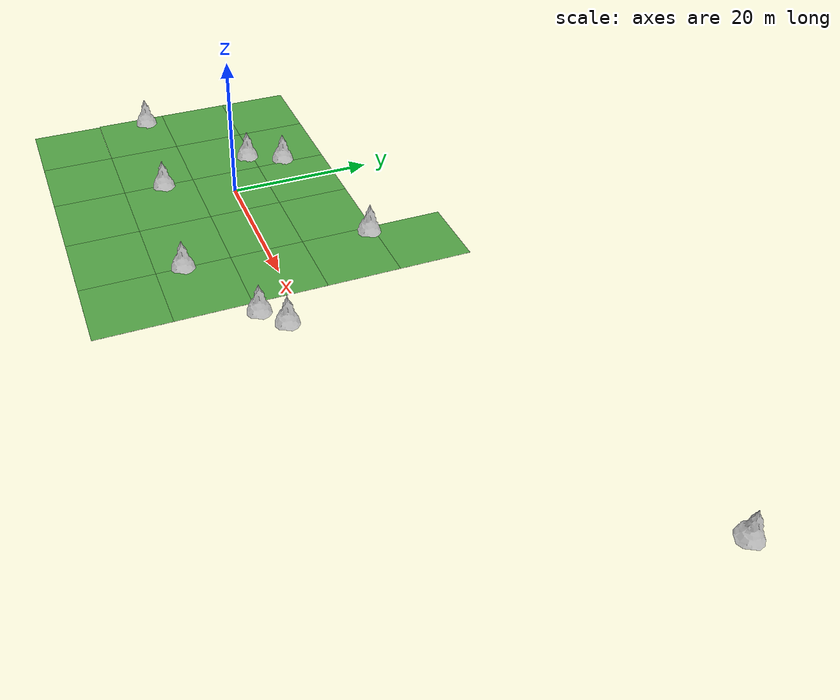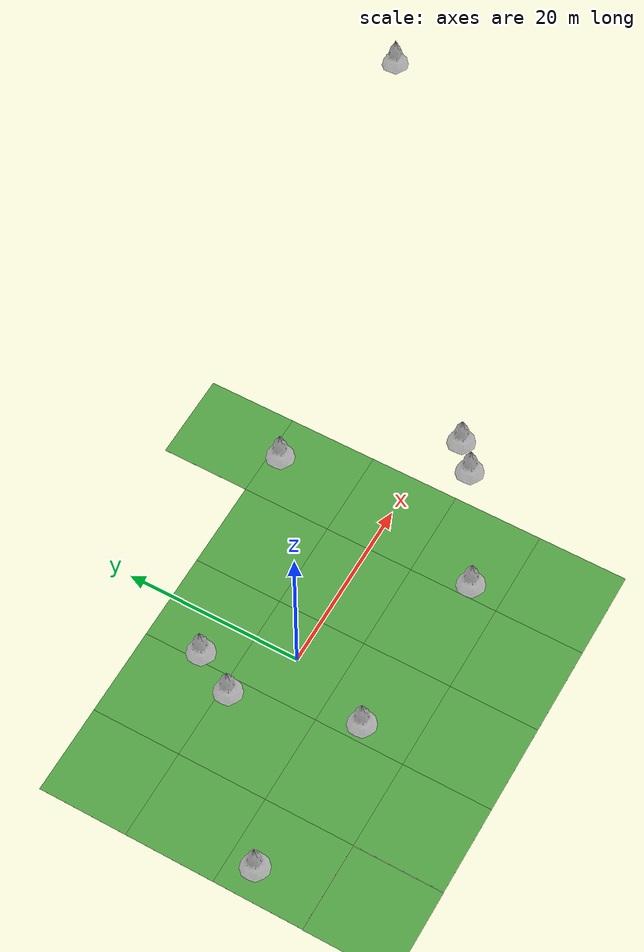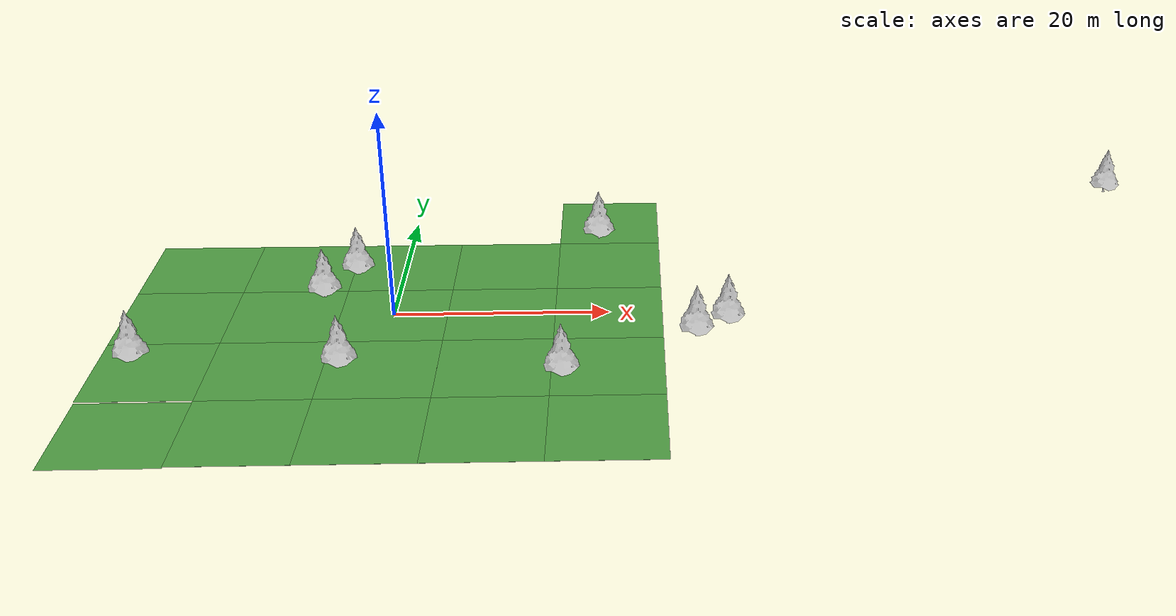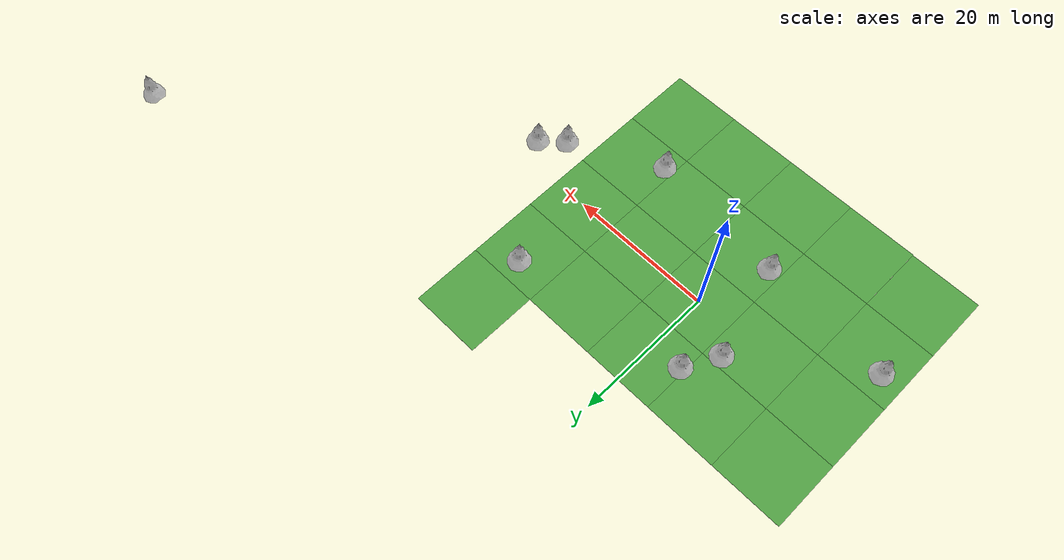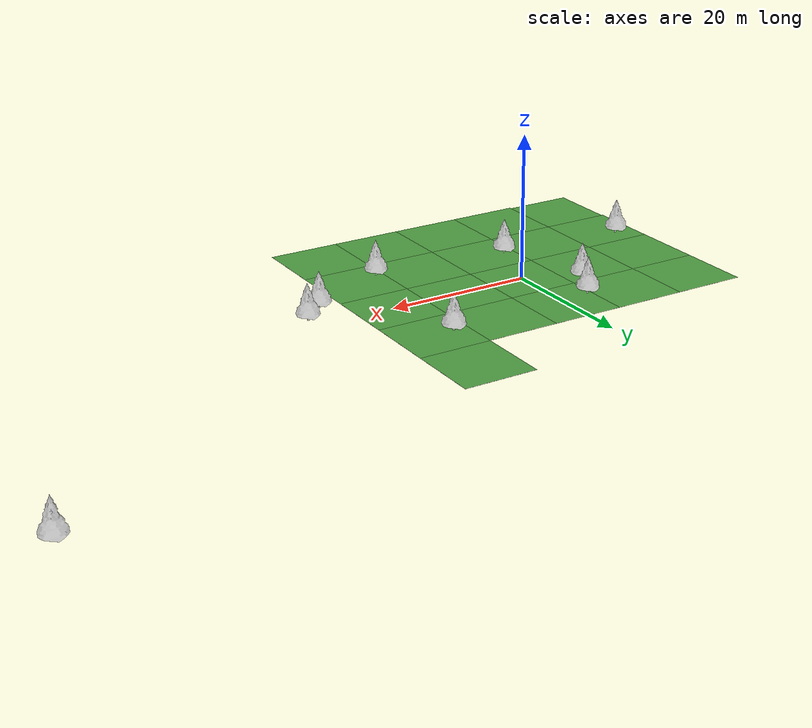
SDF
<sdf version="1.4">
 <world name="vrc_task_1">
  <physics type="ode">
   <gravity>0 0 -9.81</gravity>
   <ode>
    <solver>
     <use_dynamic_moi_rescaling>true</use_dynamic_moi_rescaling>
     <type>quick</type>
     <iters>50</iters>
     <sor>1.0</sor>
    </solver>
    <constraints>
     <cfm>0.0</cfm>
     <erp>0.2</erp>
     <contact_max_correcting_vel>100.0</contact_max_correcting_vel>
     <contact_surface_layer>0.0</contact_surface_layer>
    </constraints>
   </ode>
   <real_time_update_rate>1000</real_time_update_rate>
   <max_step_size>0.0025</max_step_size>
  </physics>
  <light type="directional" name="sun">
   <cast_shadows>false</cast_shadows>
   <pose>0 0 100 0 0 0</pose>
   <diffuse>0.8 0.8 0.8 1</diffuse>
   <specular>0.9 0.9 0.9 1</specular>
   <attenuation>
    <range>1000</range>
    <constant>0.9</constant>
    <linear>0.01</linear>
    <quadratic>0.001</quadratic>
   </attenuation>
   <direction>0.2 0.2 -0.9</direction>
  </light>
  <include><uri>model://grass_plane_small</uri></include>
  <include><name>pine_tree_1</name><uri>model://pine_tree</uri><pose>-4.5 8.7 0   0 0 0</pose></include>
  <include><name>pine_tree_2</name><uri>model://pine_tree</uri><pose>-3.5 -9.5 0   0 0 0</pose></include>
  <include><name>pine_tree_3</name><uri>model://pine_tree</uri><pose>-7 4 0   0 0 0</pose></include>
  <include><name>pine_tree_4</name><uri>model://pine_tree</uri><pose>28 -5 0.17   0 0 0</pose></include>
  <include><name>pine_tree_5</name><uri>model://pine_tree</uri><pose>19 13 1.58   0 0 0</pose></include>
  <include><name>pine_tree_6</name><uri>model://pine_tree</uri><pose>31 -2.4 0   0 0 0</pose></include>
  <include><name>pine_tree_7</name><uri>model://pine_tree</uri><pose>-22 -8 0   0 0 0</pose></include>
  <include><name>pine_tree_8</name><uri>model://pine_tree</uri><pose>75.3 30 -1.44  0 0 0</pose></include>
  <include><name>pine_tree_9</name><uri>model://pine_tree</uri><pose>16 -11.5 0  0 0 0</pose></include>
  <plugin name="ardupilot_sitl_gazebo_plugin" filename="libardupilot_sitl_gazebo_plugin.so">
   <UAV_MODEL>albatross</UAV_MODEL>
  </plugin>
 </world>
</sdf>

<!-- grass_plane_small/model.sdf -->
<sdf version='1.4'>
  <model name='grass_plan_small'>
    <static>true</static>
    <link name='link'>
      <collision name='collision'>
        <geometry>
          <plane>
            <normal>0 0 1</normal>
            <size>50 50</size>
          </plane>
        </geometry>
        <surface>
          <friction>
            <ode>
              <mu>0.5</mu>
              <mu2>.5</mu2>
            </ode>
          </friction>
        </surface>
      </collision>

      <visual name='visual_0'>
        <pose>-20 -20 0 0 0 0</pose>

        <cast_shadows>false</cast_shadows>
        <geometry>
          <plane>
            <normal>0 0 1</normal>
            <size>10 10</size>
          </plane>
        </geometry>
        <material>
          <script>
            <uri>model://grass_plane/materials/scripts</uri>
            <uri>model://grass_plane/materials/textures</uri>
            <name>vrc/grass</name>
          </script>
        </material>
      </visual>

      <visual name='visual_1'>
        <pose>-10 -20 0 0 0 0</pose>

        <cast_shadows>false</cast_shadows>
        <geometry>
          <plane>
            <normal>0 0 1</normal>
            <size>10 10</size>
          </plane>
        </geometry>
        <material>
          <script>
            <uri>model://grass_plane/materials/scripts</uri>
            <uri>model://grass_plane/materials/textures</uri>
            <name>vrc/grass</name>
          </script>
        </material>
      </visual>

      <visual name='visual_2'>
        <pose>0 -20 0 0 0 0</pose>

        <cast_shadows>false</cast_shadows>
        <geometry>
          <plane>
            <normal>0 0 1</normal>
            <size>10 10</size>
          </plane>
        </geometry>
        <material>
          <script>
            <uri>model://grass_plane/materials/scripts</uri>
            <uri>model://grass_plane/materials/textures</uri>
            <name>vrc/grass</name>
          </script>
        </material>
      </visual>

      <visual name='visual_3'>
        <pose>10 -20 0 0 0 0</pose>

        <cast_shadows>false</cast_shadows>
        <geometry>
          <plane>
            <normal>0 0 1</normal>
            <size>10 10</size>
          </plane>
        </geometry>
        <material>
          <script>
            <uri>model://grass_plane/materials/scripts</uri>
            <uri>model://grass_plane/materials/textures</uri>
            <name>vrc/grass</name>
          </script>
        </material>
      </visual>

      <visual name='visual_4'>
        <pose>20 -20 0 0 0 0</pose>

        <cast_shadows>false</cast_shadows>
        <geometry>
          <plane>
            <normal>0 0 1</normal>
            <size>10 10</size>
          </plane>
        </geometry>
        <material>
          <script>
            <uri>model://grass_plane/materials/scripts</uri>
            <uri>model://grass_plane/materials/textures</uri>
            <name>vrc/grass</name>
          </script>
        </material>
      </visual>

      <visual name='visual_6'>
        <pose>-20 -10 0 0 0 0</pose>

        <cast_shadows>false</cast_shadows>
        <geometry>
          <plane>
            <normal>0 0 1</normal>
            <size>10 10</size>
          </plane>
        </geometry>
        <material>
          <script>
            <uri>model://grass_plane/materials/scripts</uri>
            <uri>model://grass_plane/materials/textures</uri>
            <name>vrc/grass</name>
          </script>
        </material>
      </visual>

      <visual name='visual_7'>
        <pose>-10 -10 0 0 0 0</pose>

        <cast_shadows>false</cast_shadows>
        <geometry>
          <plane>
            <normal>0 0 1</normal>
            <size>10 10</size>
          </plane>
        </geometry>
        <material>
          <script>
            <uri>model://grass_plane/materials/scripts</uri>
            <uri>model://grass_plane/materials/textures</uri>
            <name>vrc/grass</name>
          </script>
        </material>
      </visual>

      <visual name='visual_8'>
        <pose>0 -10 0 0 0 0</pose>

        <cast_shadows>false</cast_shadows>
        <geometry>
          <plane>
            <normal>0 0 1</normal>
            <size>10 10</size>
          </plane>
        </geometry>
        <material>
          <script>
            <uri>model://grass_plane/materials/scripts</uri>
            <uri>model://grass_plane/materials/textures</uri>
            <name>vrc/grass</name>
          </script>
        </material>
      </visual>

      <visual name='visual_9'>
        <pose>10 -10 0 0 0 0</pose>

        <cast_shadows>false</cast_shadows>
        <geometry>
          <plane>
            <normal>0 0 1</normal>
            <size>10 10</size>
          </plane>
        </geometry>
        <material>
          <script>
            <uri>model://grass_plane/materials/scripts</uri>
            <uri>model://grass_plane/materials/textures</uri>
            <name>vrc/grass</name>
          </script>
        </material>
      </visual>

      <visual name='visual_10'>
        <pose>20 -10 0 0 0 0</pose>

        <cast_shadows>false</cast_shadows>
        <geometry>
          <plane>
            <normal>0 0 1</normal>
            <size>10 10</size>
          </plane>
        </geometry>
        <material>
          <script>
            <uri>model://grass_plane/materials/scripts</uri>
            <uri>model://grass_plane/materials/textures</uri>
            <name>vrc/grass</name>
          </script>
        </material>
      </visual>

      <visual name='visual_13'>
        <pose>-20 0 0 0 0 0</pose>

        <cast_shadows>false</cast_shadows>
        <geometry>
          <plane>
            <normal>0 0 1</normal>
            <size>10 10</size>
          </plane>
        </geometry>
        <material>
          <script>
            <uri>model://grass_plane/materials/scripts</uri>
            <uri>model://grass_plane/materials/textures</uri>
            <name>vrc/grass</name>
          </script>
        </material>
      </visual>

      <visual name='visual_14'>
        <pose>-10 0 0 0 0 0</pose>

        <cast_shadows>false</cast_shadows>
        <geometry>
          <plane>
            <normal>0 0 1</normal>
            <size>10 10</size>
          </plane>
        </geometry>
        <material>
          <script>
            <uri>model://grass_plane/materials/scripts</uri>
            <uri>model://grass_plane/materials/textures</uri>
            <name>vrc/grass</name>
          </script>
        </material>
      </visual>

      <visual name='visual_15'>
        <pose>0 0 0 0 0 0</pose>

        <cast_shadows>false</cast_shadows>
        <geometry>
          <plane>
            <normal>0 0 1</normal>
            <size>10 10</size>
          </plane>
        </geometry>
        <material>
          <script>
            <uri>model://grass_plane/materials/scripts</uri>
            <uri>model://grass_plane/materials/textures</uri>
            <name>vrc/grass</name>
          </script>
        </material>
      </visual>

      <visual name='visual_16'>
        <pose>10 0 0 0 0 0</pose>

        <cast_shadows>false</cast_shadows>
        <geometry>
          <plane>
            <normal>0 0 1</normal>
            <size>10 10</size>
          </plane>
        </geometry>
        <material>
          <script>
            <uri>model://grass_plane/materials/scripts</uri>
            <uri>model://grass_plane/materials/textures</uri>
            <name>vrc/grass</name>
          </script>
        </material>
      </visual>

      <visual name='visual_17'>
        <pose>20 0 0 0 0 0</pose>

        <cast_shadows>false</cast_shadows>
        <geometry>
          <plane>
            <normal>0 0 1</normal>
            <size>10 10</size>
          </plane>
        </geometry>
        <material>
          <script>
            <uri>model://grass_plane/materials/scripts</uri>
            <uri>model://grass_plane/materials/textures</uri>
            <name>vrc/grass</name>
          </script>
        </material>
      </visual>

      <visual name='visual_22'>
        <pose>-20 10 0 0 0 0</pose>

        <cast_shadows>false</cast_shadows>
        <geometry>
          <plane>
            <normal>0 0 1</normal>
            <size>10 10</size>
          </plane>
        </geometry>
        <material>
          <script>
            <uri>model://grass_plane/materials/scripts</uri>
            <uri>model://grass_plane/materials/textures</uri>
            <name>vrc/grass</name>
          </script>
        </material>
      </visual>

      <visual name='visual_23'>
        <pose>-10 10 0 0 0 0</pose>

        <cast_shadows>false</cast_shadows>
        <geometry>
          <plane>
            <normal>0 0 1</normal>
            <size>10 10</size>
          </plane>
        </geometry>
        <material>
          <script>
            <uri>model://grass_plane/materials/scripts</uri>
            <uri>model://grass_plane/materials/textures</uri>
            <name>vrc/grass</name>
          </script>
        </material>
      </visual>

      <visual name='visual_24'>
        <pose>0 10 0 0 0 0</pose>

        <cast_shadows>false</cast_shadows>
        <geometry>
          <plane>
            <normal>0 0 1</normal>
            <size>10 10</size>
          </plane>
        </geometry>
        <material>
          <script>
            <uri>model://grass_plane/materials/scripts</uri>
            <uri>model://grass_plane/materials/textures</uri>
            <name>vrc/grass</name>
          </script>
        </material>
      </visual>

      <visual name='visual_25'>
        <pose>10 10 0 0 0 0</pose>

        <cast_shadows>false</cast_shadows>
        <geometry>
          <plane>
            <normal>0 0 1</normal>
            <size>10 10</size>
          </plane>
        </geometry>
        <material>
          <script>
            <uri>model://grass_plane/materials/scripts</uri>
            <uri>model://grass_plane/materials/textures</uri>
            <name>vrc/grass</name>
          </script>
        </material>
      </visual>

      <visual name='visual_26'>
        <pose>20 10 0 0 0 0</pose>

        <cast_shadows>false</cast_shadows>
        <geometry>
          <plane>
            <normal>0 0 1</normal>
            <size>10 10</size>
          </plane>
        </geometry>
        <material>
          <script>
            <uri>model://grass_plane/materials/scripts</uri>
            <uri>model://grass_plane/materials/textures</uri>
            <name>vrc/grass</name>
          </script>
        </material>
      </visual>

      <visual name='visual_32'>
        <pose>20 20 0 0 0 0</pose>

        <cast_shadows>false</cast_shadows>
        <geometry>
          <plane>
            <normal>0 0 1</normal>
            <size>10 10</size>
          </plane>
        </geometry>
        <material>
          <script>
            <uri>model://grass_plane/materials/scripts</uri>
            <uri>model://grass_plane/materials/textures</uri>
            <name>vrc/grass</name>
          </script>
        </material>
      </visual>
    </link>
  </model>
</sdf>

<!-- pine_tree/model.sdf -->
<sdf version="1.6">
  <model name="pine_tree">
    <static>true</static>
    <link name="link">
      <collision name="collision">
        <geometry>
          <mesh>
            <uri>file://isr-testbed/pine_tree/meshes/pine_tree.dae</uri>
          </mesh>
        </geometry>
      </collision>
      <visual name="branch">
        <geometry>
          <mesh>
            <uri>file://isr-testbed/pine_tree/meshes/pine_tree.dae</uri>
            <submesh>
              <name>Branch</name>
            </submesh>
          </mesh>
        </geometry>
        <material>
          <script>
            <uri>file://isr-testbed/pine_tree/materials/scripts/</uri>
            <uri>file://isr-testbed/pine_tree/materials/textures/</uri>
            <name>PineTree/Branch</name>
          </script>
        </material>
      </visual>
      <visual name="bark">
        <geometry>
          <mesh>
            <uri>file://isr-testbed/pine_tree/meshes/pine_tree.dae</uri>
            <submesh>
              <name>Bark</name>
            </submesh>
          </mesh>
        </geometry>
        <material>
          <script>
            <uri>file://isr-testbed/pine_tree/materials/scripts/</uri>
            <uri>file://isr-testbed/pine_tree/materials/textures/</uri>
            <name>PineTree/Bark</name>
          </script>
        </material>
      </visual>
    </link>
  </model>
</sdf>
